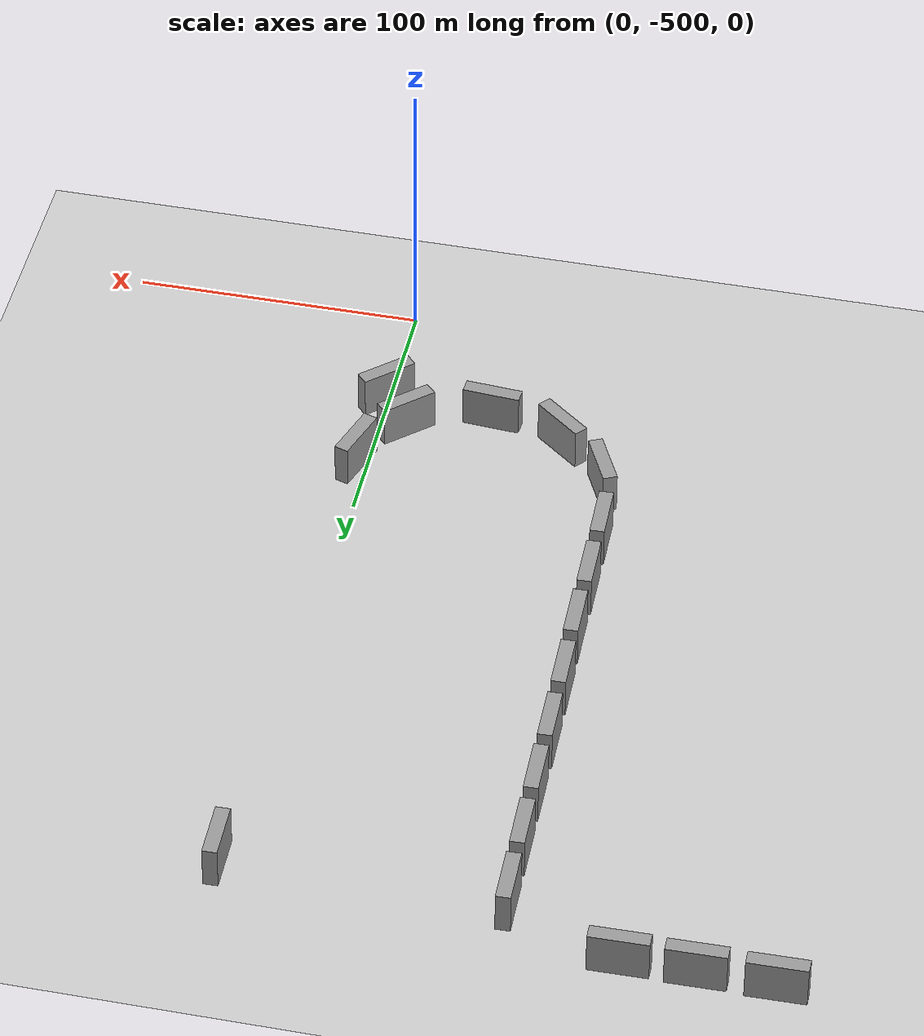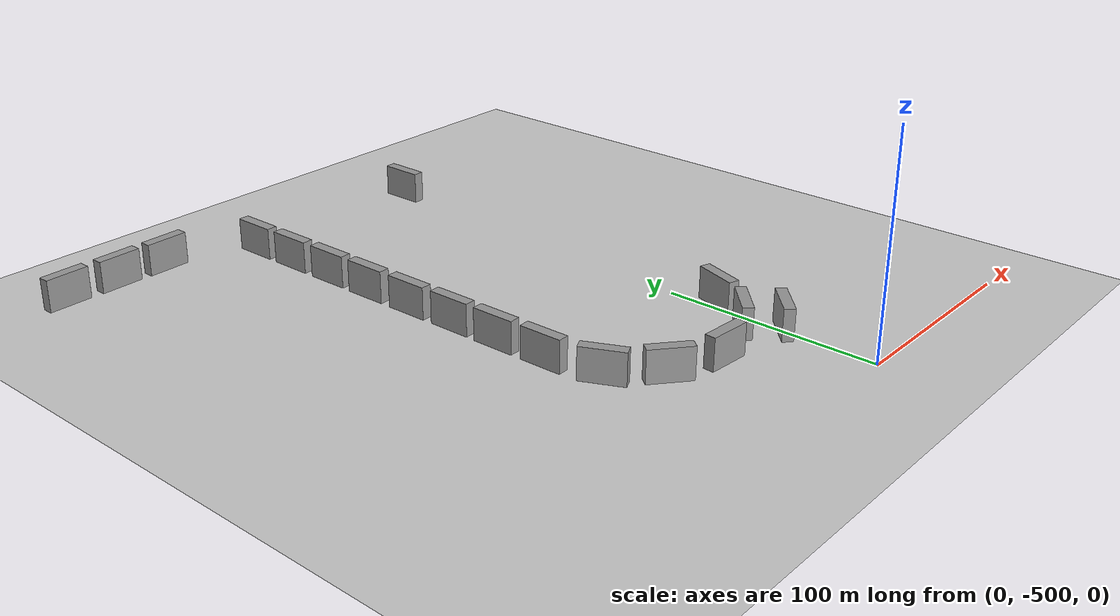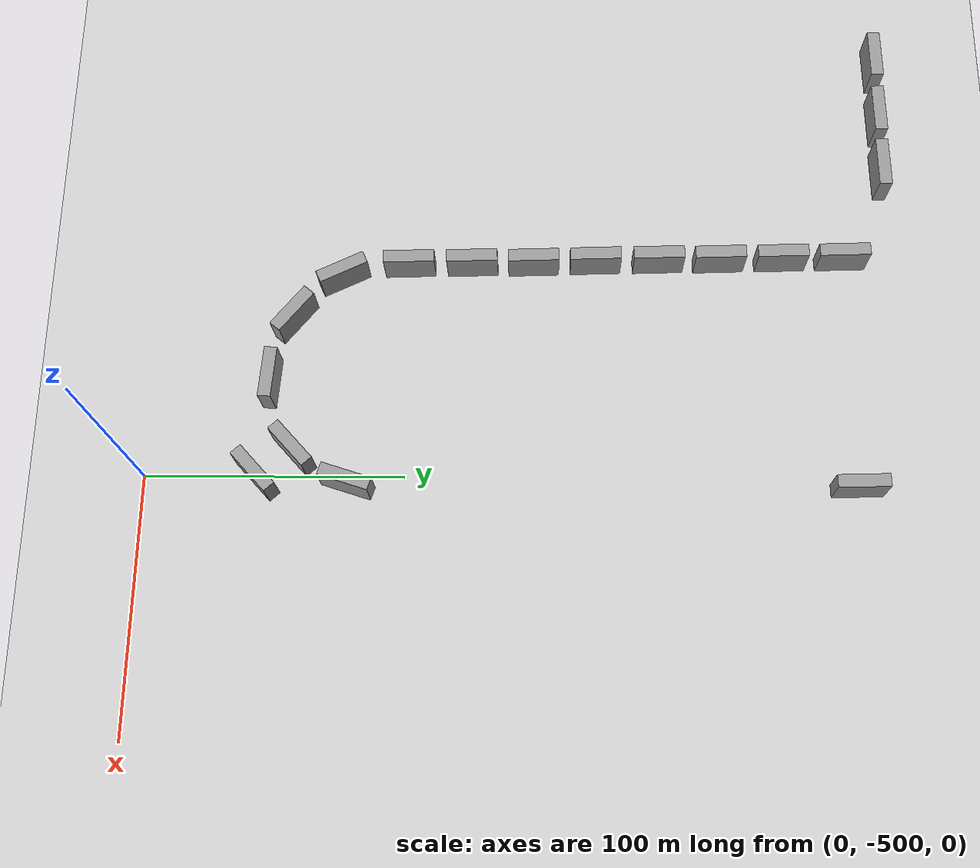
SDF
<sdf version="1.6">
 <world name="darpa_boxes">
  <model name="ground_plane">
   <static>1</static>
   <link name="link">
    <collision name="collision">
     <geometry><plane><normal>0 0 1</normal><size>2000 2000</size></plane></geometry>
     <surface>
      <contact><collide_bitmask>65535</collide_bitmask></contact>
      <friction><ode><mu>100</mu><mu2>50</mu2></ode></friction>
     </surface>
    </collision>
    <visual name="visual">
     <cast_shadows>0</cast_shadows>
     <geometry><plane><normal>0 0 1</normal><size>2000 2000</size></plane></geometry>
     <material>
      <script><uri>file://media/materials/scripts/gazebo.material</uri><name>Gazebo/Grey</name></script>
     </material>
    </visual>
   </link>
  </model>
  <model name="long_box_clone_clone_5">
   <link name="link">
    <inertial>
     <mass>1</mass>
     <inertia>
      <ixx>0.166667</ixx>
      <ixy>0</ixy>
      <ixz>0</ixz>
      <iyy>0.166667</iyy>
      <iyz>0</iyz>
      <izz>0.166667</izz>
     </inertia>
     <pose>0 0 7.5 0 -0 0</pose>
    </inertial>
    <visual name="visual">
     <geometry><box><size>5 20 15</size></box></geometry>
     <material>
      <script><name>Gazebo/Grey</name><uri>file://media/materials/scripts/gazebo.material</uri></script>
      <shader type="vertex"><normal_map>__default__</normal_map></shader>
      <ambient>0.3 0.3 0.3 1</ambient>
      <diffuse>0.7 0.7 0.7 1</diffuse>
      <specular>0.01 0.01 0.01 1</specular>
      <emissive>0 0 0 1</emissive>
     </material>
     <pose>0 0 7.5 0 -0 0</pose>
    </visual>
    <collision name="collision">
     <pose>0 0 7.5 0 -0 0</pose>
     <geometry><box><size>5 20 15</size></box></geometry>
     <surface>
      <friction>
       <ode><mu>1</mu><mu2>1</mu2><fdir1>0 0 0</fdir1><slip1>0</slip1><slip2>0</slip2></ode>
       <torsional>
        <coefficient>1</coefficient>
        <patch_radius>0</patch_radius>
        <surface_radius>0</surface_radius>
        <use_patch_radius>1</use_patch_radius>
        <ode><slip>0</slip></ode>
       </torsional>
      </friction>
      <bounce><restitution_coefficient>0</restitution_coefficient><threshold>1e+06</threshold></bounce>
      <contact>
       <collide_without_contact>0</collide_without_contact>
       <collide_without_contact_bitmask>1</collide_without_contact_bitmask>
       <collide_bitmask>1</collide_bitmask>
       <ode>
        <soft_cfm>0</soft_cfm>
        <soft_erp>0.2</soft_erp>
        <kp>1e+13</kp>
        <kd>1</kd>
        <max_vel>0.01</max_vel>
        <min_depth>0</min_depth>
       </ode>
       <bullet>
        <split_impulse>1</split_impulse>
        <split_impulse_penetration_threshold>-0.01</split_impulse_penetration_threshold>
        <soft_cfm>0</soft_cfm>
        <soft_erp>0.2</soft_erp>
        <kp>1e+13</kp>
        <kd>1</kd>
       </bullet>
      </contact>
     </surface>
    </collision>
   </link>
   <static>1</static>
   <pose>4.85871 -226.99 -0.049551 0.005047 -0.000114 0.022472</pose>
  </model>
  <model name="long_box_clone_clone_28">
   <link name="link">
    <inertial>
     <mass>1</mass>
     <inertia>
      <ixx>0.166667</ixx>
      <ixy>0</ixy>
      <ixz>0</ixz>
      <iyy>0.166667</iyy>
      <iyz>0</iyz>
      <izz>0.166667</izz>
     </inertia>
     <pose>0 0 7.5 0 -0 0</pose>
    </inertial>
    <visual name="visual">
     <geometry><box><size>5 20 15</size></box></geometry>
     <material>
      <script><name>Gazebo/Grey</name><uri>file://media/materials/scripts/gazebo.material</uri></script>
      <shader type="vertex"><normal_map>__default__</normal_map></shader>
      <ambient>0.3 0.3 0.3 1</ambient>
      <diffuse>0.7 0.7 0.7 1</diffuse>
      <specular>0.01 0.01 0.01 1</specular>
      <emissive>0 0 0 1</emissive>
     </material>
     <pose>0 0 7.5 0 -0 0</pose>
    </visual>
    <collision name="collision">
     <pose>0 0 7.5 0 -0 0</pose>
     <geometry><box><size>5 20 15</size></box></geometry>
     <surface>
      <friction>
       <ode><mu>1</mu><mu2>1</mu2><fdir1>0 0 0</fdir1><slip1>0</slip1><slip2>0</slip2></ode>
       <torsional>
        <coefficient>1</coefficient>
        <patch_radius>0</patch_radius>
        <surface_radius>0</surface_radius>
        <use_patch_radius>1</use_patch_radius>
        <ode><slip>0</slip></ode>
       </torsional>
      </friction>
      <bounce><restitution_coefficient>0</restitution_coefficient><threshold>1e+06</threshold></bounce>
      <contact>
       <collide_without_contact>0</collide_without_contact>
       <collide_without_contact_bitmask>1</collide_without_contact_bitmask>
       <collide_bitmask>1</collide_bitmask>
       <ode>
        <soft_cfm>0</soft_cfm>
        <soft_erp>0.2</soft_erp>
        <kp>1e+13</kp>
        <kd>1</kd>
        <max_vel>0.01</max_vel>
        <min_depth>0</min_depth>
       </ode>
       <bullet>
        <split_impulse>1</split_impulse>
        <split_impulse_penetration_threshold>-0.01</split_impulse_penetration_threshold>
        <soft_cfm>0</soft_cfm>
        <soft_erp>0.2</soft_erp>
        <kp>1e+13</kp>
        <kd>1</kd>
       </bullet>
      </contact>
     </surface>
    </collision>
   </link>
   <static>1</static>
   <pose>3.82121 -421.368 -0.049551 0.004812 0.001527 -0.307324</pose>
  </model>
  <model name="long_box_clone_clone_29">
   <link name="link">
    <inertial>
     <mass>1</mass>
     <inertia>
      <ixx>0.166667</ixx>
      <ixy>0</ixy>
      <ixz>0</ixz>
      <iyy>0.166667</iyy>
      <iyz>0</iyz>
      <izz>0.166667</izz>
     </inertia>
     <pose>0 0 7.5 0 -0 0</pose>
    </inertial>
    <visual name="visual">
     <geometry><box><size>5 20 15</size></box></geometry>
     <material>
      <script><name>Gazebo/Grey</name><uri>file://media/materials/scripts/gazebo.material</uri></script>
      <shader type="vertex"><normal_map>__default__</normal_map></shader>
      <ambient>0.3 0.3 0.3 1</ambient>
      <diffuse>0.7 0.7 0.7 1</diffuse>
      <specular>0.01 0.01 0.01 1</specular>
      <emissive>0 0 0 1</emissive>
     </material>
     <pose>0 0 7.5 0 -0 0</pose>
    </visual>
    <collision name="collision">
     <pose>0 0 7.5 0 -0 0</pose>
     <geometry><box><size>5 20 15</size></box></geometry>
     <surface>
      <friction>
       <ode><mu>1</mu><mu2>1</mu2><fdir1>0 0 0</fdir1><slip1>0</slip1><slip2>0</slip2></ode>
       <torsional>
        <coefficient>1</coefficient>
        <patch_radius>0</patch_radius>
        <surface_radius>0</surface_radius>
        <use_patch_radius>1</use_patch_radius>
        <ode><slip>0</slip></ode>
       </torsional>
      </friction>
      <bounce><restitution_coefficient>0</restitution_coefficient><threshold>1e+06</threshold></bounce>
      <contact>
       <collide_without_contact>0</collide_without_contact>
       <collide_without_contact_bitmask>1</collide_without_contact_bitmask>
       <collide_bitmask>1</collide_bitmask>
       <ode>
        <soft_cfm>0</soft_cfm>
        <soft_erp>0.2</soft_erp>
        <kp>1e+13</kp>
        <kd>1</kd>
        <max_vel>0.01</max_vel>
        <min_depth>0</min_depth>
       </ode>
       <bullet>
        <split_impulse>1</split_impulse>
        <split_impulse_penetration_threshold>-0.01</split_impulse_penetration_threshold>
        <soft_cfm>0</soft_cfm>
        <soft_erp>0.2</soft_erp>
        <kp>1e+13</kp>
        <kd>1</kd>
       </bullet>
      </contact>
     </surface>
    </collision>
   </link>
   <static>1</static>
   <pose>-9.11291 -442.425 -0.049551 0.003421 0.003712 -0.826352</pose>
  </model>
  <model name="long_box_clone_clone_29_clone">
   <link name="link">
    <inertial>
     <mass>1</mass>
     <inertia>
      <ixx>0.166667</ixx>
      <ixy>0</ixy>
      <ixz>0</ixz>
      <iyy>0.166667</iyy>
      <iyz>0</iyz>
      <izz>0.166667</izz>
     </inertia>
     <pose>0 0 7.5 0 -0 0</pose>
    </inertial>
    <visual name="visual">
     <geometry><box><size>5 20 15</size></box></geometry>
     <material>
      <script><name>Gazebo/Grey</name><uri>file://media/materials/scripts/gazebo.material</uri></script>
      <shader type="vertex"><normal_map>__default__</normal_map></shader>
      <ambient>0.3 0.3 0.3 1</ambient>
      <diffuse>0.7 0.7 0.7 1</diffuse>
      <specular>0.01 0.01 0.01 1</specular>
      <emissive>0 0 0 1</emissive>
     </material>
     <pose>0 0 7.5 0 -0 0</pose>
    </visual>
    <collision name="collision">
     <pose>0 0 7.5 0 -0 0</pose>
     <geometry><box><size>5 20 15</size></box></geometry>
     <surface>
      <friction>
       <ode><mu>1</mu><mu2>1</mu2><fdir1>0 0 0</fdir1><slip1>0</slip1><slip2>0</slip2></ode>
       <torsional>
        <coefficient>1</coefficient>
        <patch_radius>0</patch_radius>
        <surface_radius>0</surface_radius>
        <use_patch_radius>1</use_patch_radius>
        <ode><slip>0</slip></ode>
       </torsional>
      </friction>
      <bounce><restitution_coefficient>0</restitution_coefficient><threshold>1e+06</threshold></bounce>
      <contact>
       <collide_without_contact>0</collide_without_contact>
       <collide_without_contact_bitmask>1</collide_without_contact_bitmask>
       <collide_bitmask>1</collide_bitmask>
       <ode>
        <soft_cfm>0</soft_cfm>
        <soft_erp>0.2</soft_erp>
        <kp>1e+13</kp>
        <kd>1</kd>
        <max_vel>0.01</max_vel>
        <min_depth>0</min_depth>
       </ode>
       <bullet>
        <split_impulse>1</split_impulse>
        <split_impulse_penetration_threshold>-0.01</split_impulse_penetration_threshold>
        <soft_cfm>0</soft_cfm>
        <soft_erp>0.2</soft_erp>
        <kp>1e+13</kp>
        <kd>1</kd>
       </bullet>
      </contact>
     </surface>
    </collision>
   </link>
   <static>1</static>
   <pose>0.847183 -455.911 -0.049551 0.003421 0.003712 -0.826352</pose>
  </model>
  <model name="long_box_clone_clone_29_clone_0">
   <link name="link">
    <inertial>
     <mass>1</mass>
     <inertia>
      <ixx>0.166667</ixx>
      <ixy>0</ixy>
      <ixz>0</ixz>
      <iyy>0.166667</iyy>
      <iyz>0</iyz>
      <izz>0.166667</izz>
     </inertia>
     <pose>0 0 7.5 0 -0 0</pose>
    </inertial>
    <visual name="visual">
     <geometry><box><size>5 20 15</size></box></geometry>
     <material>
      <script><name>Gazebo/Grey</name><uri>file://media/materials/scripts/gazebo.material</uri></script>
      <shader type="vertex"><normal_map>__default__</normal_map></shader>
      <ambient>0.3 0.3 0.3 1</ambient>
      <diffuse>0.7 0.7 0.7 1</diffuse>
      <specular>0.01 0.01 0.01 1</specular>
      <emissive>0 0 0 1</emissive>
     </material>
     <pose>0 0 7.5 0 -0 0</pose>
    </visual>
    <collision name="collision">
     <pose>0 0 7.5 0 -0 0</pose>
     <geometry><box><size>5 20 15</size></box></geometry>
     <surface>
      <friction>
       <ode><mu>1</mu><mu2>1</mu2><fdir1>0 0 0</fdir1><slip1>0</slip1><slip2>0</slip2></ode>
       <torsional>
        <coefficient>1</coefficient>
        <patch_radius>0</patch_radius>
        <surface_radius>0</surface_radius>
        <use_patch_radius>1</use_patch_radius>
        <ode><slip>0</slip></ode>
       </torsional>
      </friction>
      <bounce><restitution_coefficient>0</restitution_coefficient><threshold>1e+06</threshold></bounce>
      <contact>
       <collide_without_contact>0</collide_without_contact>
       <collide_without_contact_bitmask>1</collide_without_contact_bitmask>
       <collide_bitmask>1</collide_bitmask>
       <ode>
        <soft_cfm>0</soft_cfm>
        <soft_erp>0.2</soft_erp>
        <kp>1e+13</kp>
        <kd>1</kd>
        <max_vel>0.01</max_vel>
        <min_depth>0</min_depth>
       </ode>
       <bullet>
        <split_impulse>1</split_impulse>
        <split_impulse_penetration_threshold>-0.01</split_impulse_penetration_threshold>
        <soft_cfm>0</soft_cfm>
        <soft_erp>0.2</soft_erp>
        <kp>1e+13</kp>
        <kd>1</kd>
       </bullet>
      </contact>
     </surface>
    </collision>
   </link>
   <static>1</static>
   <pose>-37.6116 -452.622 -0.049551 -0.000368 0.005035 -1.64399</pose>
  </model>
  <model name="long_box_clone_clone_29_clone_1">
   <link name="link">
    <inertial>
     <mass>1</mass>
     <inertia>
      <ixx>0.166667</ixx>
      <ixy>0</ixy>
      <ixz>0</ixz>
      <iyy>0.166667</iyy>
      <iyz>0</iyz>
      <izz>0.166667</izz>
     </inertia>
     <pose>0 0 7.5 0 -0 0</pose>
    </inertial>
    <visual name="visual">
     <geometry><box><size>5 20 15</size></box></geometry>
     <material>
      <script><name>Gazebo/Grey</name><uri>file://media/materials/scripts/gazebo.material</uri></script>
      <shader type="vertex"><normal_map>__default__</normal_map></shader>
      <ambient>0.3 0.3 0.3 1</ambient>
      <diffuse>0.7 0.7 0.7 1</diffuse>
      <specular>0.01 0.01 0.01 1</specular>
      <emissive>0 0 0 1</emissive>
     </material>
     <pose>0 0 7.5 0 -0 0</pose>
    </visual>
    <collision name="collision">
     <pose>0 0 7.5 0 -0 0</pose>
     <geometry><box><size>5 20 15</size></box></geometry>
     <surface>
      <friction>
       <ode><mu>1</mu><mu2>1</mu2><fdir1>0 0 0</fdir1><slip1>0</slip1><slip2>0</slip2></ode>
       <torsional>
        <coefficient>1</coefficient>
        <patch_radius>0</patch_radius>
        <surface_radius>0</surface_radius>
        <use_patch_radius>1</use_patch_radius>
        <ode><slip>0</slip></ode>
       </torsional>
      </friction>
      <bounce><restitution_coefficient>0</restitution_coefficient><threshold>1e+06</threshold></bounce>
      <contact>
       <collide_without_contact>0</collide_without_contact>
       <collide_without_contact_bitmask>1</collide_without_contact_bitmask>
       <collide_bitmask>1</collide_bitmask>
       <ode>
        <soft_cfm>0</soft_cfm>
        <soft_erp>0.2</soft_erp>
        <kp>1e+13</kp>
        <kd>1</kd>
        <max_vel>0.01</max_vel>
        <min_depth>0</min_depth>
       </ode>
       <bullet>
        <split_impulse>1</split_impulse>
        <split_impulse_penetration_threshold>-0.01</split_impulse_penetration_threshold>
        <soft_cfm>0</soft_cfm>
        <soft_erp>0.2</soft_erp>
        <kp>1e+13</kp>
        <kd>1</kd>
       </bullet>
      </contact>
     </surface>
    </collision>
   </link>
   <static>1</static>
   <pose>-63.8159 -444.64 -0.049551 -0.003175 0.003924 -2.25121</pose>
  </model>
  <model name="long_box_clone_clone_29_clone_2">
   <link name="link">
    <inertial>
     <mass>1</mass>
     <inertia>
      <ixx>0.166667</ixx>
      <ixy>0</ixy>
      <ixz>0</ixz>
      <iyy>0.166667</iyy>
      <iyz>0</iyz>
      <izz>0.166667</izz>
     </inertia>
     <pose>0 0 7.5 0 -0 0</pose>
    </inertial>
    <visual name="visual">
     <geometry><box><size>5 20 15</size></box></geometry>
     <material>
      <script><name>Gazebo/Grey</name><uri>file://media/materials/scripts/gazebo.material</uri></script>
      <shader type="vertex"><normal_map>__default__</normal_map></shader>
      <ambient>0.3 0.3 0.3 1</ambient>
      <diffuse>0.7 0.7 0.7 1</diffuse>
      <specular>0.01 0.01 0.01 1</specular>
      <emissive>0 0 0 1</emissive>
     </material>
     <pose>0 0 7.5 0 -0 0</pose>
    </visual>
    <collision name="collision">
     <pose>0 0 7.5 0 -0 0</pose>
     <geometry><box><size>5 20 15</size></box></geometry>
     <surface>
      <friction>
       <ode><mu>1</mu><mu2>1</mu2><fdir1>0 0 0</fdir1><slip1>0</slip1><slip2>0</slip2></ode>
       <torsional>
        <coefficient>1</coefficient>
        <patch_radius>0</patch_radius>
        <surface_radius>0</surface_radius>
        <use_patch_radius>1</use_patch_radius>
        <ode><slip>0</slip></ode>
       </torsional>
      </friction>
      <bounce><restitution_coefficient>0</restitution_coefficient><threshold>1e+06</threshold></bounce>
      <contact>
       <collide_without_contact>0</collide_without_contact>
       <collide_without_contact_bitmask>1</collide_without_contact_bitmask>
       <collide_bitmask>1</collide_bitmask>
       <ode>
        <soft_cfm>0</soft_cfm>
        <soft_erp>0.2</soft_erp>
        <kp>1e+13</kp>
        <kd>1</kd>
        <max_vel>0.01</max_vel>
        <min_depth>0</min_depth>
       </ode>
       <bullet>
        <split_impulse>1</split_impulse>
        <split_impulse_penetration_threshold>-0.01</split_impulse_penetration_threshold>
        <soft_cfm>0</soft_cfm>
        <soft_erp>0.2</soft_erp>
        <kp>1e+13</kp>
        <kd>1</kd>
       </bullet>
      </contact>
     </surface>
    </collision>
   </link>
   <static>1</static>
   <pose>-81.4706 -426.179 -0.049551 0.004549 -0.002188 0.448228</pose>
  </model>
  <model name="long_box_clone_clone_29_clone_3">
   <link name="link">
    <inertial>
     <mass>1</mass>
     <inertia>
      <ixx>0.166667</ixx>
      <ixy>0</ixy>
      <ixz>0</ixz>
      <iyy>0.166667</iyy>
      <iyz>0</iyz>
      <izz>0.166667</izz>
     </inertia>
     <pose>0 0 7.5 0 -0 0</pose>
    </inertial>
    <visual name="visual">
     <geometry><box><size>5 20 15</size></box></geometry>
     <material>
      <script><name>Gazebo/Grey</name><uri>file://media/materials/scripts/gazebo.material</uri></script>
      <shader type="vertex"><normal_map>__default__</normal_map></shader>
      <ambient>0.3 0.3 0.3 1</ambient>
      <diffuse>0.7 0.7 0.7 1</diffuse>
      <specular>0.01 0.01 0.01 1</specular>
      <emissive>0 0 0 1</emissive>
     </material>
     <pose>0 0 7.5 0 -0 0</pose>
    </visual>
    <collision name="collision">
     <pose>0 0 7.5 0 -0 0</pose>
     <geometry><box><size>5 20 15</size></box></geometry>
     <surface>
      <friction>
       <ode><mu>1</mu><mu2>1</mu2><fdir1>0 0 0</fdir1><slip1>0</slip1><slip2>0</slip2></ode>
       <torsional>
        <coefficient>1</coefficient>
        <patch_radius>0</patch_radius>
        <surface_radius>0</surface_radius>
        <use_patch_radius>1</use_patch_radius>
        <ode><slip>0</slip></ode>
       </torsional>
      </friction>
      <bounce><restitution_coefficient>0</restitution_coefficient><threshold>1e+06</threshold></bounce>
      <contact>
       <collide_without_contact>0</collide_without_contact>
       <collide_without_contact_bitmask>1</collide_without_contact_bitmask>
       <collide_bitmask>1</collide_bitmask>
       <ode>
        <soft_cfm>0</soft_cfm>
        <soft_erp>0.2</soft_erp>
        <kp>1e+13</kp>
        <kd>1</kd>
        <max_vel>0.01</max_vel>
        <min_depth>0</min_depth>
       </ode>
       <bullet>
        <split_impulse>1</split_impulse>
        <split_impulse_penetration_threshold>-0.01</split_impulse_penetration_threshold>
        <soft_cfm>0</soft_cfm>
        <soft_erp>0.2</soft_erp>
        <kp>1e+13</kp>
        <kd>1</kd>
       </bullet>
      </contact>
     </surface>
    </collision>
   </link>
   <static>1</static>
   <pose>-86.2114 -399.978 -0.049551 0.005046 -0.000145 0.028592</pose>
  </model>
  <model name="long_box_clone_clone_29_clone_3_clone">
   <link name="link">
    <inertial>
     <mass>1</mass>
     <inertia>
      <ixx>0.166667</ixx>
      <ixy>0</ixy>
      <ixz>0</ixz>
      <iyy>0.166667</iyy>
      <iyz>0</iyz>
      <izz>0.166667</izz>
     </inertia>
     <pose>0 0 7.5 0 -0 0</pose>
    </inertial>
    <visual name="visual">
     <geometry><box><size>5 20 15</size></box></geometry>
     <material>
      <script><name>Gazebo/Grey</name><uri>file://media/materials/scripts/gazebo.material</uri></script>
      <shader type="vertex"><normal_map>__default__</normal_map></shader>
      <ambient>0.3 0.3 0.3 1</ambient>
      <diffuse>0.7 0.7 0.7 1</diffuse>
      <specular>0.01 0.01 0.01 1</specular>
      <emissive>0 0 0 1</emissive>
     </material>
     <pose>0 0 7.5 0 -0 0</pose>
    </visual>
    <collision name="collision">
     <pose>0 0 7.5 0 -0 0</pose>
     <geometry><box><size>5 20 15</size></box></geometry>
     <surface>
      <friction>
       <ode><mu>1</mu><mu2>1</mu2><fdir1>0 0 0</fdir1><slip1>0</slip1><slip2>0</slip2></ode>
       <torsional>
        <coefficient>1</coefficient>
        <patch_radius>0</patch_radius>
        <surface_radius>0</surface_radius>
        <use_patch_radius>1</use_patch_radius>
        <ode><slip>0</slip></ode>
       </torsional>
      </friction>
      <bounce><restitution_coefficient>0</restitution_coefficient><threshold>1e+06</threshold></bounce>
      <contact>
       <collide_without_contact>0</collide_without_contact>
       <collide_without_contact_bitmask>1</collide_without_contact_bitmask>
       <collide_bitmask>1</collide_bitmask>
       <ode>
        <soft_cfm>0</soft_cfm>
        <soft_erp>0.2</soft_erp>
        <kp>1e+13</kp>
        <kd>1</kd>
        <max_vel>0.01</max_vel>
        <min_depth>0</min_depth>
       </ode>
       <bullet>
        <split_impulse>1</split_impulse>
        <split_impulse_penetration_threshold>-0.01</split_impulse_penetration_threshold>
        <soft_cfm>0</soft_cfm>
        <soft_erp>0.2</soft_erp>
        <kp>1e+13</kp>
        <kd>1</kd>
       </bullet>
      </contact>
     </surface>
    </collision>
   </link>
   <static>1</static>
   <pose>-86.7029 -375.076 -0.049551 0.005046 -0.000145 0.028592</pose>
  </model>
  <model name="long_box_clone_clone_29_clone_3_clone_clone">
   <link name="link">
    <inertial>
     <mass>1</mass>
     <inertia>
      <ixx>0.166667</ixx>
      <ixy>0</ixy>
      <ixz>0</ixz>
      <iyy>0.166667</iyy>
      <iyz>0</iyz>
      <izz>0.166667</izz>
     </inertia>
     <pose>0 0 7.5 0 -0 0</pose>
    </inertial>
    <visual name="visual">
     <geometry><box><size>5 20 15</size></box></geometry>
     <material>
      <script><name>Gazebo/Grey</name><uri>file://media/materials/scripts/gazebo.material</uri></script>
      <shader type="vertex"><normal_map>__default__</normal_map></shader>
      <ambient>0.3 0.3 0.3 1</ambient>
      <diffuse>0.7 0.7 0.7 1</diffuse>
      <specular>0.01 0.01 0.01 1</specular>
      <emissive>0 0 0 1</emissive>
     </material>
     <pose>0 0 7.5 0 -0 0</pose>
    </visual>
    <collision name="collision">
     <pose>0 0 7.5 0 -0 0</pose>
     <geometry><box><size>5 20 15</size></box></geometry>
     <surface>
      <friction>
       <ode><mu>1</mu><mu2>1</mu2><fdir1>0 0 0</fdir1><slip1>0</slip1><slip2>0</slip2></ode>
       <torsional>
        <coefficient>1</coefficient>
        <patch_radius>0</patch_radius>
        <surface_radius>0</surface_radius>
        <use_patch_radius>1</use_patch_radius>
        <ode><slip>0</slip></ode>
       </torsional>
      </friction>
      <bounce><restitution_coefficient>0</restitution_coefficient><threshold>1e+06</threshold></bounce>
      <contact>
       <collide_without_contact>0</collide_without_contact>
       <collide_without_contact_bitmask>1</collide_without_contact_bitmask>
       <collide_bitmask>1</collide_bitmask>
       <ode>
        <soft_cfm>0</soft_cfm>
        <soft_erp>0.2</soft_erp>
        <kp>1e+13</kp>
        <kd>1</kd>
        <max_vel>0.01</max_vel>
        <min_depth>0</min_depth>
       </ode>
       <bullet>
        <split_impulse>1</split_impulse>
        <split_impulse_penetration_threshold>-0.01</split_impulse_penetration_threshold>
        <soft_cfm>0</soft_cfm>
        <soft_erp>0.2</soft_erp>
        <kp>1e+13</kp>
        <kd>1</kd>
       </bullet>
      </contact>
     </surface>
    </collision>
   </link>
   <static>1</static>
   <pose>-86.9494 -350.761 -0.049551 0.005046 -0.000145 0.028592</pose>
  </model>
  <model name="long_box_clone_clone_29_clone_3_clone_clone_0">
   <link name="link">
    <inertial>
     <mass>1</mass>
     <inertia>
      <ixx>0.166667</ixx>
      <ixy>0</ixy>
      <ixz>0</ixz>
      <iyy>0.166667</iyy>
      <iyz>0</iyz>
      <izz>0.166667</izz>
     </inertia>
     <pose>0 0 7.5 0 -0 0</pose>
    </inertial>
    <visual name="visual">
     <geometry><box><size>5 20 15</size></box></geometry>
     <material>
      <script><name>Gazebo/Grey</name><uri>file://media/materials/scripts/gazebo.material</uri></script>
      <shader type="vertex"><normal_map>__default__</normal_map></shader>
      <ambient>0.3 0.3 0.3 1</ambient>
      <diffuse>0.7 0.7 0.7 1</diffuse>
      <specular>0.01 0.01 0.01 1</specular>
      <emissive>0 0 0 1</emissive>
     </material>
     <pose>0 0 7.5 0 -0 0</pose>
    </visual>
    <collision name="collision">
     <pose>0 0 7.5 0 -0 0</pose>
     <geometry><box><size>5 20 15</size></box></geometry>
     <surface>
      <friction>
       <ode><mu>1</mu><mu2>1</mu2><fdir1>0 0 0</fdir1><slip1>0</slip1><slip2>0</slip2></ode>
       <torsional>
        <coefficient>1</coefficient>
        <patch_radius>0</patch_radius>
        <surface_radius>0</surface_radius>
        <use_patch_radius>1</use_patch_radius>
        <ode><slip>0</slip></ode>
       </torsional>
      </friction>
      <bounce><restitution_coefficient>0</restitution_coefficient><threshold>1e+06</threshold></bounce>
      <contact>
       <collide_without_contact>0</collide_without_contact>
       <collide_without_contact_bitmask>1</collide_without_contact_bitmask>
       <collide_bitmask>1</collide_bitmask>
       <ode>
        <soft_cfm>0</soft_cfm>
        <soft_erp>0.2</soft_erp>
        <kp>1e+13</kp>
        <kd>1</kd>
        <max_vel>0.01</max_vel>
        <min_depth>0</min_depth>
       </ode>
       <bullet>
        <split_impulse>1</split_impulse>
        <split_impulse_penetration_threshold>-0.01</split_impulse_penetration_threshold>
        <soft_cfm>0</soft_cfm>
        <soft_erp>0.2</soft_erp>
        <kp>1e+13</kp>
        <kd>1</kd>
       </bullet>
      </contact>
     </surface>
    </collision>
   </link>
   <static>1</static>
   <pose>-87.7148 -326.153 -0.049551 0.005046 -0.000145 0.028592</pose>
  </model>
  <model name="long_box_clone_clone_29_clone_3_clone_clone_1">
   <link name="link">
    <inertial>
     <mass>1</mass>
     <inertia>
      <ixx>0.166667</ixx>
      <ixy>0</ixy>
      <ixz>0</ixz>
      <iyy>0.166667</iyy>
      <iyz>0</iyz>
      <izz>0.166667</izz>
     </inertia>
     <pose>0 0 7.5 0 -0 0</pose>
    </inertial>
    <visual name="visual">
     <geometry><box><size>5 20 15</size></box></geometry>
     <material>
      <script><name>Gazebo/Grey</name><uri>file://media/materials/scripts/gazebo.material</uri></script>
      <shader type="vertex"><normal_map>__default__</normal_map></shader>
      <ambient>0.3 0.3 0.3 1</ambient>
      <diffuse>0.7 0.7 0.7 1</diffuse>
      <specular>0.01 0.01 0.01 1</specular>
      <emissive>0 0 0 1</emissive>
     </material>
     <pose>0 0 7.5 0 -0 0</pose>
    </visual>
    <collision name="collision">
     <pose>0 0 7.5 0 -0 0</pose>
     <geometry><box><size>5 20 15</size></box></geometry>
     <surface>
      <friction>
       <ode><mu>1</mu><mu2>1</mu2><fdir1>0 0 0</fdir1><slip1>0</slip1><slip2>0</slip2></ode>
       <torsional>
        <coefficient>1</coefficient>
        <patch_radius>0</patch_radius>
        <surface_radius>0</surface_radius>
        <use_patch_radius>1</use_patch_radius>
        <ode><slip>0</slip></ode>
       </torsional>
      </friction>
      <bounce><restitution_coefficient>0</restitution_coefficient><threshold>1e+06</threshold></bounce>
      <contact>
       <collide_without_contact>0</collide_without_contact>
       <collide_without_contact_bitmask>1</collide_without_contact_bitmask>
       <collide_bitmask>1</collide_bitmask>
       <ode>
        <soft_cfm>0</soft_cfm>
        <soft_erp>0.2</soft_erp>
        <kp>1e+13</kp>
        <kd>1</kd>
        <max_vel>0.01</max_vel>
        <min_depth>0</min_depth>
       </ode>
       <bullet>
        <split_impulse>1</split_impulse>
        <split_impulse_penetration_threshold>-0.01</split_impulse_penetration_threshold>
        <soft_cfm>0</soft_cfm>
        <soft_erp>0.2</soft_erp>
        <kp>1e+13</kp>
        <kd>1</kd>
       </bullet>
      </contact>
     </surface>
    </collision>
   </link>
   <static>1</static>
   <pose>-88.2973 -301.075 -0.049551 0.005046 -0.000145 0.028592</pose>
  </model>
  <model name="long_box_clone_clone_29_clone_3_clone_clone_2">
   <link name="link">
    <inertial>
     <mass>1</mass>
     <inertia>
      <ixx>0.166667</ixx>
      <ixy>0</ixy>
      <ixz>0</ixz>
      <iyy>0.166667</iyy>
      <iyz>0</iyz>
      <izz>0.166667</izz>
     </inertia>
     <pose>0 0 7.5 0 -0 0</pose>
    </inertial>
    <visual name="visual">
     <geometry><box><size>5 20 15</size></box></geometry>
     <material>
      <script><name>Gazebo/Grey</name><uri>file://media/materials/scripts/gazebo.material</uri></script>
      <shader type="vertex"><normal_map>__default__</normal_map></shader>
      <ambient>0.3 0.3 0.3 1</ambient>
      <diffuse>0.7 0.7 0.7 1</diffuse>
      <specular>0.01 0.01 0.01 1</specular>
      <emissive>0 0 0 1</emissive>
     </material>
     <pose>0 0 7.5 0 -0 0</pose>
    </visual>
    <collision name="collision">
     <pose>0 0 7.5 0 -0 0</pose>
     <geometry><box><size>5 20 15</size></box></geometry>
     <surface>
      <friction>
       <ode><mu>1</mu><mu2>1</mu2><fdir1>0 0 0</fdir1><slip1>0</slip1><slip2>0</slip2></ode>
       <torsional>
        <coefficient>1</coefficient>
        <patch_radius>0</patch_radius>
        <surface_radius>0</surface_radius>
        <use_patch_radius>1</use_patch_radius>
        <ode><slip>0</slip></ode>
       </torsional>
      </friction>
      <bounce><restitution_coefficient>0</restitution_coefficient><threshold>1e+06</threshold></bounce>
      <contact>
       <collide_without_contact>0</collide_without_contact>
       <collide_without_contact_bitmask>1</collide_without_contact_bitmask>
       <collide_bitmask>1</collide_bitmask>
       <ode>
        <soft_cfm>0</soft_cfm>
        <soft_erp>0.2</soft_erp>
        <kp>1e+13</kp>
        <kd>1</kd>
        <max_vel>0.01</max_vel>
        <min_depth>0</min_depth>
       </ode>
       <bullet>
        <split_impulse>1</split_impulse>
        <split_impulse_penetration_threshold>-0.01</split_impulse_penetration_threshold>
        <soft_cfm>0</soft_cfm>
        <soft_erp>0.2</soft_erp>
        <kp>1e+13</kp>
        <kd>1</kd>
       </bullet>
      </contact>
     </surface>
    </collision>
   </link>
   <static>1</static>
   <pose>-88.6464 -276.704 -0.049551 0.005046 -0.000145 0.028592</pose>
  </model>
  <model name="long_box_clone_clone_29_clone_3_clone_clone_3">
   <link name="link">
    <inertial>
     <mass>1</mass>
     <inertia>
      <ixx>0.166667</ixx>
      <ixy>0</ixy>
      <ixz>0</ixz>
      <iyy>0.166667</iyy>
      <iyz>0</iyz>
      <izz>0.166667</izz>
     </inertia>
     <pose>0 0 7.5 0 -0 0</pose>
    </inertial>
    <visual name="visual">
     <geometry><box><size>5 20 15</size></box></geometry>
     <material>
      <script><name>Gazebo/Grey</name><uri>file://media/materials/scripts/gazebo.material</uri></script>
      <shader type="vertex"><normal_map>__default__</normal_map></shader>
      <ambient>0.3 0.3 0.3 1</ambient>
      <diffuse>0.7 0.7 0.7 1</diffuse>
      <specular>0.01 0.01 0.01 1</specular>
      <emissive>0 0 0 1</emissive>
     </material>
     <pose>0 0 7.5 0 -0 0</pose>
    </visual>
    <collision name="collision">
     <pose>0 0 7.5 0 -0 0</pose>
     <geometry><box><size>5 20 15</size></box></geometry>
     <surface>
      <friction>
       <ode><mu>1</mu><mu2>1</mu2><fdir1>0 0 0</fdir1><slip1>0</slip1><slip2>0</slip2></ode>
       <torsional>
        <coefficient>1</coefficient>
        <patch_radius>0</patch_radius>
        <surface_radius>0</surface_radius>
        <use_patch_radius>1</use_patch_radius>
        <ode><slip>0</slip></ode>
       </torsional>
      </friction>
      <bounce><restitution_coefficient>0</restitution_coefficient><threshold>1e+06</threshold></bounce>
      <contact>
       <collide_without_contact>0</collide_without_contact>
       <collide_without_contact_bitmask>1</collide_without_contact_bitmask>
       <collide_bitmask>1</collide_bitmask>
       <ode>
        <soft_cfm>0</soft_cfm>
        <soft_erp>0.2</soft_erp>
        <kp>1e+13</kp>
        <kd>1</kd>
        <max_vel>0.01</max_vel>
        <min_depth>0</min_depth>
       </ode>
       <bullet>
        <split_impulse>1</split_impulse>
        <split_impulse_penetration_threshold>-0.01</split_impulse_penetration_threshold>
        <soft_cfm>0</soft_cfm>
        <soft_erp>0.2</soft_erp>
        <kp>1e+13</kp>
        <kd>1</kd>
       </bullet>
      </contact>
     </surface>
    </collision>
   </link>
   <static>1</static>
   <pose>-89.2435 -252.007 -0.049551 0.005046 -0.000145 0.028592</pose>
  </model>
  <model name="long_box_clone_clone_29_clone_3_clone_clone_4">
   <link name="link">
    <inertial>
     <mass>1</mass>
     <inertia>
      <ixx>0.166667</ixx>
      <ixy>0</ixy>
      <ixz>0</ixz>
      <iyy>0.166667</iyy>
      <iyz>0</iyz>
      <izz>0.166667</izz>
     </inertia>
     <pose>0 0 7.5 0 -0 0</pose>
    </inertial>
    <visual name="visual">
     <geometry><box><size>5 20 15</size></box></geometry>
     <material>
      <script><name>Gazebo/Grey</name><uri>file://media/materials/scripts/gazebo.material</uri></script>
      <shader type="vertex"><normal_map>__default__</normal_map></shader>
      <ambient>0.3 0.3 0.3 1</ambient>
      <diffuse>0.7 0.7 0.7 1</diffuse>
      <specular>0.01 0.01 0.01 1</specular>
      <emissive>0 0 0 1</emissive>
     </material>
     <pose>0 0 7.5 0 -0 0</pose>
    </visual>
    <collision name="collision">
     <pose>0 0 7.5 0 -0 0</pose>
     <geometry><box><size>5 20 15</size></box></geometry>
     <surface>
      <friction>
       <ode><mu>1</mu><mu2>1</mu2><fdir1>0 0 0</fdir1><slip1>0</slip1><slip2>0</slip2></ode>
       <torsional>
        <coefficient>1</coefficient>
        <patch_radius>0</patch_radius>
        <surface_radius>0</surface_radius>
        <use_patch_radius>1</use_patch_radius>
        <ode><slip>0</slip></ode>
       </torsional>
      </friction>
      <bounce><restitution_coefficient>0</restitution_coefficient><threshold>1e+06</threshold></bounce>
      <contact>
       <collide_without_contact>0</collide_without_contact>
       <collide_without_contact_bitmask>1</collide_without_contact_bitmask>
       <collide_bitmask>1</collide_bitmask>
       <ode>
        <soft_cfm>0</soft_cfm>
        <soft_erp>0.2</soft_erp>
        <kp>1e+13</kp>
        <kd>1</kd>
        <max_vel>0.01</max_vel>
        <min_depth>0</min_depth>
       </ode>
       <bullet>
        <split_impulse>1</split_impulse>
        <split_impulse_penetration_threshold>-0.01</split_impulse_penetration_threshold>
        <soft_cfm>0</soft_cfm>
        <soft_erp>0.2</soft_erp>
        <kp>1e+13</kp>
        <kd>1</kd>
       </bullet>
      </contact>
     </surface>
    </collision>
   </link>
   <static>1</static>
   <pose>-89.8164 -227.586 -0.049551 0.005046 -0.000145 0.028592</pose>
  </model>
  <model name="long_box_clone_clone_29_clone_3_clone_clone_14_clone_clone_0_clone_0_clone_2">
   <link name="link">
    <inertial>
     <mass>1</mass>
     <inertia>
      <ixx>0.166667</ixx>
      <ixy>0</ixy>
      <ixz>0</ixz>
      <iyy>0.166667</iyy>
      <iyz>0</iyz>
      <izz>0.166667</izz>
     </inertia>
     <pose>0 0 7.5 0 -0 0</pose>
    </inertial>
    <visual name="visual">
     <geometry><box><size>5 20 15</size></box></geometry>
     <material>
      <script><name>Gazebo/Grey</name><uri>file://media/materials/scripts/gazebo.material</uri></script>
      <shader type="vertex"><normal_map>__default__</normal_map></shader>
      <ambient>0.3 0.3 0.3 1</ambient>
      <diffuse>0.7 0.7 0.7 1</diffuse>
      <specular>0.01 0.01 0.01 1</specular>
      <emissive>0 0 0 1</emissive>
     </material>
     <pose>0 0 7.5 0 -0 0</pose>
    </visual>
    <collision name="collision">
     <pose>0 0 7.5 0 -0 0</pose>
     <geometry><box><size>5 20 15</size></box></geometry>
     <surface>
      <friction>
       <ode><mu>1</mu><mu2>1</mu2><fdir1>0 0 0</fdir1><slip1>0</slip1><slip2>0</slip2></ode>
       <torsional>
        <coefficient>1</coefficient>
        <patch_radius>0</patch_radius>
        <surface_radius>0</surface_radius>
        <use_patch_radius>1</use_patch_radius>
        <ode><slip>0</slip></ode>
       </torsional>
      </friction>
      <bounce><restitution_coefficient>0</restitution_coefficient><threshold>1e+06</threshold></bounce>
      <contact>
       <collide_without_contact>0</collide_without_contact>
       <collide_without_contact_bitmask>1</collide_without_contact_bitmask>
       <collide_bitmask>1</collide_bitmask>
       <ode>
        <soft_cfm>0</soft_cfm>
        <soft_erp>0.2</soft_erp>
        <kp>1e+13</kp>
        <kd>1</kd>
        <max_vel>0.01</max_vel>
        <min_depth>0</min_depth>
       </ode>
       <bullet>
        <split_impulse>1</split_impulse>
        <split_impulse_penetration_threshold>-0.01</split_impulse_penetration_threshold>
        <soft_cfm>0</soft_cfm>
        <soft_erp>0.2</soft_erp>
        <kp>1e+13</kp>
        <kd>1</kd>
       </bullet>
      </contact>
     </surface>
    </collision>
   </link>
   <static>1</static>
   <pose>-179.036 -209.121 -0.049551 8.7e-05 0.005047 -1.55363</pose>
  </model>
  <model name="long_box_clone_clone_29_clone_3_clone_clone_14_clone_clone_0_clone_0_clone_3">
   <link name="link">
    <inertial>
     <mass>1</mass>
     <inertia>
      <ixx>0.166667</ixx>
      <ixy>0</ixy>
      <ixz>0</ixz>
      <iyy>0.166667</iyy>
      <iyz>0</iyz>
      <izz>0.166667</izz>
     </inertia>
     <pose>0 0 7.5 0 -0 0</pose>
    </inertial>
    <visual name="visual">
     <geometry><box><size>5 20 15</size></box></geometry>
     <material>
      <script><name>Gazebo/Grey</name><uri>file://media/materials/scripts/gazebo.material</uri></script>
      <shader type="vertex"><normal_map>__default__</normal_map></shader>
      <ambient>0.3 0.3 0.3 1</ambient>
      <diffuse>0.7 0.7 0.7 1</diffuse>
      <specular>0.01 0.01 0.01 1</specular>
      <emissive>0 0 0 1</emissive>
     </material>
     <pose>0 0 7.5 0 -0 0</pose>
    </visual>
    <collision name="collision">
     <pose>0 0 7.5 0 -0 0</pose>
     <geometry><box><size>5 20 15</size></box></geometry>
     <surface>
      <friction>
       <ode><mu>1</mu><mu2>1</mu2><fdir1>0 0 0</fdir1><slip1>0</slip1><slip2>0</slip2></ode>
       <torsional>
        <coefficient>1</coefficient>
        <patch_radius>0</patch_radius>
        <surface_radius>0</surface_radius>
        <use_patch_radius>1</use_patch_radius>
        <ode><slip>0</slip></ode>
       </torsional>
      </friction>
      <bounce><restitution_coefficient>0</restitution_coefficient><threshold>1e+06</threshold></bounce>
      <contact>
       <collide_without_contact>0</collide_without_contact>
       <collide_without_contact_bitmask>1</collide_without_contact_bitmask>
       <collide_bitmask>1</collide_bitmask>
       <ode>
        <soft_cfm>0</soft_cfm>
        <soft_erp>0.2</soft_erp>
        <kp>1e+13</kp>
        <kd>1</kd>
        <max_vel>0.01</max_vel>
        <min_depth>0</min_depth>
       </ode>
       <bullet>
        <split_impulse>1</split_impulse>
        <split_impulse_penetration_threshold>-0.01</split_impulse_penetration_threshold>
        <soft_cfm>0</soft_cfm>
        <soft_erp>0.2</soft_erp>
        <kp>1e+13</kp>
        <kd>1</kd>
       </bullet>
      </contact>
     </surface>
    </collision>
   </link>
   <static>1</static>
   <pose>-153.509 -209.322 -0.049551 8.7e-05 0.005047 -1.55363</pose>
  </model>
  <model name="long_box_clone_clone_29_clone_3_clone_clone_14_clone_clone_0_clone_0_clone_4">
   <link name="link">
    <inertial>
     <mass>1</mass>
     <inertia>
      <ixx>0.166667</ixx>
      <ixy>0</ixy>
      <ixz>0</ixz>
      <iyy>0.166667</iyy>
      <iyz>0</iyz>
      <izz>0.166667</izz>
     </inertia>
     <pose>0 0 7.5 0 -0 0</pose>
    </inertial>
    <visual name="visual">
     <geometry><box><size>5 20 15</size></box></geometry>
     <material>
      <script><name>Gazebo/Grey</name><uri>file://media/materials/scripts/gazebo.material</uri></script>
      <shader type="vertex"><normal_map>__default__</normal_map></shader>
      <ambient>0.3 0.3 0.3 1</ambient>
      <diffuse>0.7 0.7 0.7 1</diffuse>
      <specular>0.01 0.01 0.01 1</specular>
      <emissive>0 0 0 1</emissive>
     </material>
     <pose>0 0 7.5 0 -0 0</pose>
    </visual>
    <collision name="collision">
     <pose>0 0 7.5 0 -0 0</pose>
     <geometry><box><size>5 20 15</size></box></geometry>
     <surface>
      <friction>
       <ode><mu>1</mu><mu2>1</mu2><fdir1>0 0 0</fdir1><slip1>0</slip1><slip2>0</slip2></ode>
       <torsional>
        <coefficient>1</coefficient>
        <patch_radius>0</patch_radius>
        <surface_radius>0</surface_radius>
        <use_patch_radius>1</use_patch_radius>
        <ode><slip>0</slip></ode>
       </torsional>
      </friction>
      <bounce><restitution_coefficient>0</restitution_coefficient><threshold>1e+06</threshold></bounce>
      <contact>
       <collide_without_contact>0</collide_without_contact>
       <collide_without_contact_bitmask>1</collide_without_contact_bitmask>
       <collide_bitmask>1</collide_bitmask>
       <ode>
        <soft_cfm>0</soft_cfm>
        <soft_erp>0.2</soft_erp>
        <kp>1e+13</kp>
        <kd>1</kd>
        <max_vel>0.01</max_vel>
        <min_depth>0</min_depth>
       </ode>
       <bullet>
        <split_impulse>1</split_impulse>
        <split_impulse_penetration_threshold>-0.01</split_impulse_penetration_threshold>
        <soft_cfm>0</soft_cfm>
        <soft_erp>0.2</soft_erp>
        <kp>1e+13</kp>
        <kd>1</kd>
       </bullet>
      </contact>
     </surface>
    </collision>
   </link>
   <static>1</static>
   <pose>-128.882 -209.402 -0.049551 8.7e-05 0.005047 -1.55363</pose>
  </model>
 </world>
</sdf>
